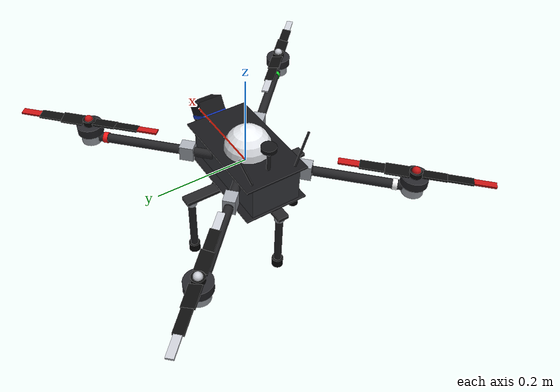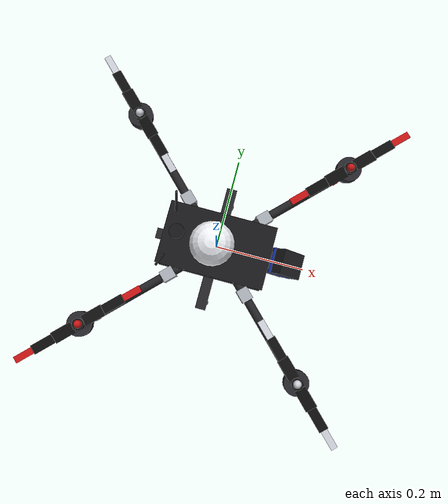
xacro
<?xml version="1.0"?>
<robot name="drone" xmlns:xacro="http://www.ros.org/wiki/xacro">
  <!-- Vehicle total is now 2.771 kg: the 0.05 kg lidar placeholder was
       replaced by a real Livox Mid-360 (0.265 kg). Keep PX4's airframe mass
       and the SDF lumped inertial in sync. -->

  <material name="carbon"><color rgba="0.09 0.09 0.1 1"/></material>
  <material name="arm_black"><color rgba="0.14 0.14 0.15 1"/></material>
  <material name="alu_dark"><color rgba="0.24 0.25 0.27 1"/></material>
  <material name="alu_light"><color rgba="0.66 0.68 0.71 1"/></material>
  <material name="shell_white"><color rgba="0.93 0.94 0.96 1"/></material>
  <material name="motor_graphite"><color rgba="0.15 0.15 0.17 1"/></material>
  <material name="prop_black"><color rgba="0.05 0.05 0.05 1"/></material>
  <material name="accent_red"><color rgba="0.78 0.08 0.08 1"/></material>
  <material name="accent_silver"><color rgba="0.8 0.81 0.84 1"/></material>
  <material name="camera_body"><color rgba="0.1 0.1 0.11 1"/></material>
  <material name="camera_accent"><color rgba="0.1 0.25 0.85 1"/></material>
  <material name="lens_barrel"><color rgba="0.04 0.04 0.05 1"/></material>
  <material name="lens_glass"><color rgba="0.02 0.05 0.2 1"/></material>
  <material name="foot_rubber"><color rgba="0.03 0.03 0.03 1"/></material>
  <material name="gps_black"><color rgba="0.08 0.08 0.09 1"/></material>
  <material name="led_red"><color rgba="0.95 0.1 0.1 1"/></material>
  <material name="led_green"><color rgba="0.1 0.9 0.2 1"/></material>
  <material name="led_white"><color rgba="0.95 0.95 0.95 1"/></material>

  <link name="base_footprint"/>

  <joint name="base_footprint_to_base_link" type="fixed">
    <parent link="base_footprint"/>
    <child link="base_link"/>
    <origin xyz="0 0 0" rpy="0 0 0"/>
  </joint>

  <link name="base_link">
    <visual name="arm_root_a"><geometry><cylinder radius="0.01" length="0.2828"/></geometry><origin xyz="0 0 0" rpy="0 1.5708 0.7854"/><material name="arm_black"/></visual>
    <visual name="arm_root_b"><geometry><cylinder radius="0.01" length="0.2828"/></geometry><origin xyz="0 0 0" rpy="0 1.5708 -0.7854"/><material name="arm_black"/></visual>
    <visual name="gear_bar_x"><geometry><box size="0.29 0.024 0.008"/></geometry><origin xyz="0 0 -0.046" rpy="0 0 0"/><material name="arm_black"/></visual>
    <visual name="gear_bar_y"><geometry><box size="0.024 0.29 0.008"/></geometry><origin xyz="0 0 -0.046" rpy="0 0 0"/><material name="arm_black"/></visual>
    <visual name="bottom_plate"><geometry><box size="0.24 0.14 0.004"/></geometry><origin xyz="0 0 -0.04" rpy="0 0 0"/><material name="carbon"/></visual>
    <visual name="pod"><geometry><box size="0.232 0.11 0.076"/></geometry><material name="alu_dark"/></visual>
    <visual name="top_plate"><geometry><box size="0.24 0.14 0.004"/></geometry><origin xyz="0 0 0.04" rpy="0 0 0"/><material name="carbon"/></visual>
    <visual name="dome"><geometry><sphere radius="0.05"/></geometry><origin xyz="-0.01 0 0.042" rpy="0 0 0"/><material name="shell_white"/></visual>
    <visual name="arm_clamp_1"><geometry><box size="0.03 0.026 0.034"/></geometry><origin xyz="0.088 0.088 0" rpy="0 0 0.7854"/><material name="alu_light"/></visual>
    <visual name="arm_clamp_2"><geometry><box size="0.03 0.026 0.034"/></geometry><origin xyz="-0.088 0.088 0" rpy="0 0 2.3562"/><material name="alu_light"/></visual>
    <visual name="arm_clamp_3"><geometry><box size="0.03 0.026 0.034"/></geometry><origin xyz="-0.088 -0.088 0" rpy="0 0 -2.3562"/><material name="alu_light"/></visual>
    <visual name="arm_clamp_4"><geometry><box size="0.03 0.026 0.034"/></geometry><origin xyz="0.088 -0.088 0" rpy="0 0 -0.7854"/><material name="alu_light"/></visual>
    <visual name="camera_bracket"><geometry><box size="0.02 0.04 0.036"/></geometry><origin xyz="0.124 0 0.012" rpy="0 0 0"/><material name="alu_dark"/></visual>
    <visual name="gps_mast"><geometry><cylinder radius="0.004" length="0.05"/></geometry><origin xyz="-0.085 0 0.067" rpy="0 0 0"/><material name="arm_black"/></visual>
    <visual name="gps_puck"><geometry><cylinder radius="0.016" length="0.01"/></geometry><origin xyz="-0.085 0 0.097" rpy="0 0 0"/><material name="gps_black"/></visual>
    <visual name="antenna_left"><geometry><cylinder radius="0.0025" length="0.08"/></geometry><origin xyz="-0.105 0.0637 0.0796" rpy="-0.35 0 0"/><material name="arm_black"/></visual>
    <visual name="antenna_right"><geometry><cylinder radius="0.0025" length="0.08"/></geometry><origin xyz="-0.105 -0.0637 0.0796" rpy="0.35 0 0"/><material name="arm_black"/></visual>

    <collision>
      <geometry>
        <box size="0.3 0.3 0.1"/>
      </geometry>
    </collision>

    <inertial>
      <mass value="1.537"/>
      <inertia
        ixx="0.013375"
        ixy="0"
        ixz="0"
        iyy="0.013375"
        iyz="0"
        izz="0.023060"/>
    </inertial>
  </link>

  <!-- ==================== ARMS + ROTORS ==================== -->

  <xacro:macro name="arm_rotor" params="id x y yaw spin led">

    <link name="arm_${id}">
      <!-- VISUAL REFRESH: same tube as before, plus the motor (base + bell, 5010 size) at the rotor
           position and a coloured light collar (red front-left, green front-right, white at the rear). -->
      <visual name="tube"><geometry><cylinder radius="0.01" length="0.2"/></geometry><origin xyz="0.1 0 0" rpy="0 1.5708 0"/><material name="arm_black"/></visual>
      <visual name="motor_base"><geometry><cylinder radius="0.022" length="0.024"/></geometry><origin xyz="0.2 0 0" rpy="0 0 0"/><material name="alu_light"/></visual>
      <visual name="motor_bell"><geometry><cylinder radius="0.0275" length="0.02"/></geometry><origin xyz="0.2 0 0.022" rpy="0 0 0"/><material name="motor_graphite"/></visual>
      <visual name="light_collar"><geometry><cylinder radius="0.0115" length="0.01"/></geometry><origin xyz="0.165 0 0" rpy="0 1.5708 0"/><material name="${led}"/></visual>

      <collision>
        <geometry>
          <cylinder radius="0.01" length="0.2"/>
        </geometry>
        <origin xyz="0.1 0 0" rpy="0 1.5708 0"/>
      </collision>

      <inertial>
        <mass value="0.192"/>
        <inertia
          ixx="0.000384"
          ixy="0"
          ixz="0"
          iyy="0.000384"
          iyz="0"
          izz="0.000384"/>
      </inertial>
    </link>

    <joint name="base_to_arm_${id}" type="fixed">
      <parent link="base_link"/>
      <child link="arm_${id}"/>
      <origin xyz="${x} ${y} 0" rpy="0 0 ${yaw}"/>
    </joint>

    <link name="rotor_${id}">
      <visual name="hub"><geometry><cylinder radius="0.013" length="0.012"/></geometry><origin xyz="0 0 0.038" rpy="0 0 0"/><material name="prop_black"/></visual>
      <visual name="nut"><geometry><sphere radius="0.009"/></geometry><origin xyz="0 0 0.044" rpy="0 0 0"/><material name="${'accent_silver' if spin == 'ccw' else 'accent_red'}"/></visual>
      <visual name="blade_p_a"><geometry><box size="0.048 0.026 0.004"/></geometry><origin xyz="0.036 0 0.038" rpy="${1 * (1 if spin == 'ccw' else -1) * 0.18} 0 0"/><material name="prop_black"/></visual>
      <visual name="blade_p_b"><geometry><box size="0.05 0.021 0.004"/></geometry><origin xyz="0.085 0 0.038" rpy="${1 * (1 if spin == 'ccw' else -1) * 0.12} 0 0"/><material name="prop_black"/></visual>
      <visual name="blade_p_c"><geometry><box size="0.0424 0.015 0.004"/></geometry><origin xyz="0.1312 0 0.038" rpy="${1 * (1 if spin == 'ccw' else -1) * 0.06} 0 0"/><material name="${'accent_silver' if spin == 'ccw' else 'accent_red'}"/></visual>
      <visual name="blade_n_a"><geometry><box size="0.048 0.026 0.004"/></geometry><origin xyz="-0.036 0 0.038" rpy="${-1 * (1 if spin == 'ccw' else -1) * 0.18} 0 0"/><material name="prop_black"/></visual>
      <visual name="blade_n_b"><geometry><box size="0.05 0.021 0.004"/></geometry><origin xyz="-0.085 0 0.038" rpy="${-1 * (1 if spin == 'ccw' else -1) * 0.12} 0 0"/><material name="prop_black"/></visual>
      <visual name="blade_n_c"><geometry><box size="0.0424 0.015 0.004"/></geometry><origin xyz="-0.1312 0 0.038" rpy="${-1 * (1 if spin == 'ccw' else -1) * 0.06} 0 0"/><material name="${'accent_silver' if spin == 'ccw' else 'accent_red'}"/></visual>

      <collision>
        <geometry>
          <cylinder radius="0.1524" length="0.01"/>
        </geometry>
      </collision>

      <inertial>
        <mass value="0.015"/>
        <inertia
          ixx="0.000116"
          ixy="0"
          ixz="0"
          iyy="0.000116"
          iyz="0"
          izz="0.000232"/>
      </inertial>
    </link>

    <joint name="arm_${id}_to_rotor_${id}" type="continuous">
      <parent link="arm_${id}"/>
      <child link="rotor_${id}"/>
      <origin xyz="0.2 0 0" rpy="0 0 0"/>
      <axis xyz="0 0 1"/>
    </joint>

  </xacro:macro>

  <!-- Quad-X -->

  <xacro:arm_rotor
    id="1"
    x="0.1"
    y="0.1"
    yaw="0.7854"
    spin="cw"
    led="led_red"/>

  <xacro:arm_rotor
    id="2"
    x="-0.1"
    y="0.1"
    yaw="2.3562"
    spin="ccw"
    led="led_white"/>

  <xacro:arm_rotor
    id="3"
    x="-0.1"
    y="-0.1"
    yaw="-2.3562"
    spin="cw"
    led="led_white"/>

  <xacro:arm_rotor
    id="4"
    x="0.1"
    y="-0.1"
    yaw="-0.7854"
    spin="ccw"
    led="led_green"/>

  <!-- ==================== CAMERA ==================== -->

  <link name="camera_link">
    <visual name="housing"><geometry><box size="0.055 0.055 0.07"/></geometry><material name="camera_body"/></visual>
    <visual name="accent_band"><geometry><box size="0.0562 0.0562 0.008"/></geometry><material name="camera_accent"/></visual>
    <visual name="lens_barrel"><geometry><cylinder radius="0.017" length="0.01"/></geometry><origin xyz="0.0325 0 0" rpy="0 1.5708 0"/><material name="lens_barrel"/></visual>
    <visual name="lens_glass"><geometry><cylinder radius="0.012" length="0.002"/></geometry><origin xyz="0.0375 0 0" rpy="0 1.5708 0"/><material name="lens_glass"/></visual>

    <collision>
      <geometry>
        <box size="0.055 0.055 0.07"/>
      </geometry>
    </collision>

    <inertial>
      <mass value="0.095"/>
      <inertia
        ixx="0.0000627"
        ixy="0"
        ixz="0"
        iyy="0.0000627"
        iyz="0"
        izz="0.0000479"/>
    </inertial>
  </link>

  <link name="camera_gimbal_link">
    <!-- Mount/vibration-damper interface only — the SIYI A8 Mini's own
         95 g (gimbal mechanism included) is already on camera_link above. -->
    <inertial>
      <mass value="0.005"/>
      <inertia ixx="0.000001" ixy="0" ixz="0" iyy="0.000001" iyz="0" izz="0.000001"/>
    </inertial>
  </link>

  <joint name="base_to_gimbal" type="fixed">
    <parent link="base_link"/>
    <child link="camera_gimbal_link"/>
    <origin xyz="0.15 0 0.02" rpy="0 0 0"/>
  </joint>

  <joint name="camera_gimbal_joint" type="fixed">
    <parent link="camera_gimbal_link"/>
    <child link="camera_link"/>
    <origin xyz="0 0 0" rpy="0 0.559 0"/>
  </joint>

  <link name="camera_link_optical"/>

  <joint name="camera_to_optical" type="fixed">
    <parent link="camera_link"/>
    <child link="camera_link_optical"/>
    <origin xyz="0 0 0" rpy="-1.5708 0 -1.5708"/>
  </joint>

  <!-- ==================== LANDING LEGS ==================== -->

  <xacro:macro name="landing_leg" params="id x y">
    <link name="landing_leg_${id}">
      <visual name="post"><geometry><cylinder radius="0.008" length="0.15"/></geometry><material name="arm_black"/></visual>
      <visual name="foot"><geometry><cylinder radius="0.012" length="0.02"/></geometry><origin xyz="0 0 -0.065" rpy="0 0 0"/><material name="foot_rubber"/></visual>
      <visual name="collar"><geometry><cylinder radius="0.011" length="0.01"/></geometry><origin xyz="0 0 0.07" rpy="0 0 0"/><material name="alu_light"/></visual>

      <collision>
        <geometry>
          <cylinder radius="0.008" length="0.15"/>
        </geometry>
      </collision>

      <inertial>
        <mass value="0.01"/>
        <inertia
          ixx="0.00001"
          ixy="0"
          ixz="0"
          iyy="0.00001"
          iyz="0"
          izz="0.000001"/>
      </inertial>
    </link>

    <joint name="base_to_landing_leg_${id}" type="fixed">
      <parent link="base_link"/>
      <child link="landing_leg_${id}"/>
      <origin xyz="${x} ${y} -0.125" rpy="0 0 0"/>
    </joint>
  </xacro:macro>

  <xacro:landing_leg id="left" x="0" y="0.13"/>
  <xacro:landing_leg id="right" x="0" y="-0.13"/>
  <xacro:landing_leg id="front" x="0.13" y="0"/>
  <xacro:landing_leg id="rear" x="-0.13" y="0"/>

  <!-- ==================== IMU ==================== -->

  <link name="imu_link">
    <visual>
      <geometry>
        <box size="0.01 0.01 0.005"/>
      </geometry>

      <material name="green">
        <color rgba="0.1 0.8 0.1 1"/>
      </material>
    </visual>

    <collision>
      <geometry>
        <box size="0.01 0.01 0.005"/>
      </geometry>
    </collision>

    <inertial>
      <mass value="0.001"/>
      <inertia
        ixx="0.000001"
        ixy="0"
        ixz="0"
        iyy="0.000001"
        iyz="0"
        izz="0.000001"/>
    </inertial>
  </link>

  <joint name="base_to_imu" type="fixed">
    <parent link="base_link"/>
    <child link="imu_link"/>
    <origin xyz="0 0 0.01" rpy="0 0 0"/>
  </joint>

  <!-- ==================== LIDAR ==================== -->

  <link name="lidar_link">
    <!-- Livox Mid-360: 65 x 65 x 60 mm, 265 g (Livox datasheet). Mounted
         upside down (roll 180 deg, see base_to_lidar), NOT tilted. -->
    <visual name="body"><geometry><box size="0.065 0.065 0.06"/></geometry><material name="alu_dark"/></visual>
    <visual name="window_band"><geometry><cylinder radius="0.0335" length="0.03"/></geometry><material name="lens_barrel"/></visual>

    <collision>
      <geometry>
        <box size="0.065 0.065 0.06"/>
      </geometry>
    </collision>

    <inertial>
      <mass value="0.265"/>
      <inertia ixx="0.000174" ixy="0" ixz="0" iyy="0.000174" iyz="0" izz="0.000187"/>
    </inertial>
  </link>

  <joint name="base_to_lidar" type="fixed">
    <parent link="base_link"/>
    <child link="lidar_link"/>
    <!-- Upside-down mount (roll = pi): the Mid-360's -7..+52 deg vertical
         FOV then covers +7 deg above to -52 deg below the horizon. The
         sensor frame is level, not tilted. -->
    <origin xyz="0 0 -0.08" rpy="3.14159265 0 0"/>
  </joint>

  <gazebo reference="lidar_link">
    <disableFixedJointLumping>true</disableFixedJointLumping>

    <sensor name="lidar_sensor" type="gpu_lidar">
      <always_on>true</always_on>
      <update_rate>10</update_rate>
      <topic>/model/drone/scan</topic>
      <visualize>false</visualize>
      <lidar>
        <scan>
          <horizontal>
            <samples>500</samples>
            <resolution>1</resolution>
            <min_angle>-3.14159265</min_angle>
            <max_angle>3.14159265</max_angle>
          </horizontal>
          <vertical>
            <samples>40</samples>
            <resolution>1</resolution>
            <min_angle>-0.1222</min_angle>
            <max_angle>0.9076</max_angle>
          </vertical>
        </scan>
        <range>
          <min>0.2</min>
          <max>40.0</max>
          <resolution>0.01</resolution>
        </range>
        <noise>
          <type>gaussian</type>
          <mean>0.0</mean>
          <stddev>0.02</stddev>
        </noise>
      </lidar>
    </sensor>
  </gazebo>

  <!-- ==================== GAZEBO IMU ==================== -->

  <gazebo reference="imu_link">

    <sensor
      name="imu_sensor"
      type="imu">

      <always_on>true</always_on>

      <update_rate>200</update_rate>

      <topic>/model/drone/imu</topic>

    </sensor>

  </gazebo>

  <!-- ==================== GAZEBO CAMERA ==================== -->

  <gazebo reference="camera_link">

    <sensor
      name="camera_sensor"
      type="camera">

      <always_on>true</always_on>
      <update_rate>30</update_rate>
      <topic>/model/drone/camera</topic>
      <visualize>true</visualize>

      <camera>
        <horizontal_fov>1.3962634</horizontal_fov>
        <image>
          <width>640</width>
          <height>480</height>
          <format>R8G8B8</format>
        </image>
        <clip>
          <near>0.05</near>
          <far>100</far>
        </clip>
      </camera>

    </sensor>

  </gazebo>

  <!-- ==================== ODOMETRY ==================== -->

  <gazebo>

    <plugin
      filename="gz-sim-odometry-publisher-system"
      name="gz::sim::systems::OdometryPublisher">

      <odom_frame>odom</odom_frame>

      <robot_base_frame>base_link</robot_base_frame>

      <odom_topic>/model/drone/odometry</odom_topic>

      <odom_publish_frequency>100</odom_publish_frequency>

      <dimensions>3</dimensions>

    </plugin>

  </gazebo>

  <!-- ==================== MOTORS ==================== -->

  <xacro:macro
    name="motor_model"
    params="id motor_number direction">

    <gazebo>

      <plugin
        filename="gz-sim-multicopter-motor-model-system"
        name="gz::sim::systems::MulticopterMotorModel">

        <robotNamespace>
          drone
        </robotNamespace>

        <jointName>
          arm_${id}_to_rotor_${id}
        </jointName>

        <linkName>
          rotor_${id}
        </linkName>

        <turningDirection>
          ${direction}
        </turningDirection>

        <timeConstantUp>
          0.06
        </timeConstantUp>

        <timeConstantDown>
          0.09
        </timeConstantDown>

        <maxRotVelocity>
          650.0
        </maxRotVelocity>

        <motorConstant>
          2.68e-05
        </motorConstant>

        <momentConstant>
          0.0192
        </momentConstant>

        <commandSubTopic>
          command/motor_speed
        </commandSubTopic>

        <motorNumber>
          ${motor_number}
        </motorNumber>

        <rotorDragCoefficient>
          1.161e-04
        </rotorDragCoefficient>

        <rollingMomentCoefficient>
          1.44e-06
        </rollingMomentCoefficient>

        <rotorVelocitySlowdownSim>
          10
        </rotorVelocitySlowdownSim>

        <motorType>
          velocity
        </motorType>

      </plugin>

    </gazebo>

  </xacro:macro>

  <xacro:motor_model
    id="1"
    motor_number="0"
    direction="cw"/>

  <xacro:motor_model
    id="2"
    motor_number="1"
    direction="ccw"/>

  <xacro:motor_model
    id="3"
    motor_number="2"
    direction="cw"/>

  <xacro:motor_model
    id="4"
    motor_number="3"
    direction="ccw"/>

</robot>
